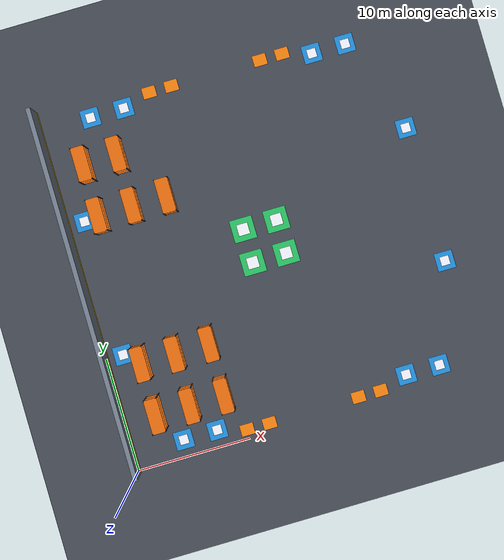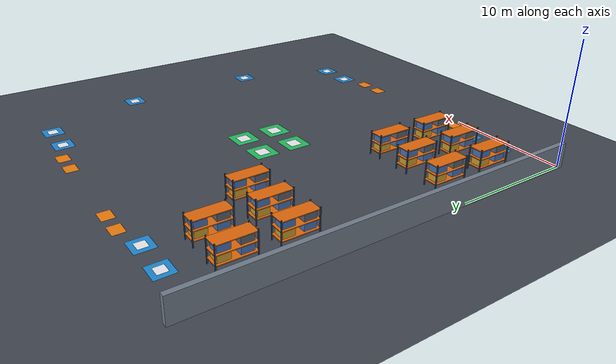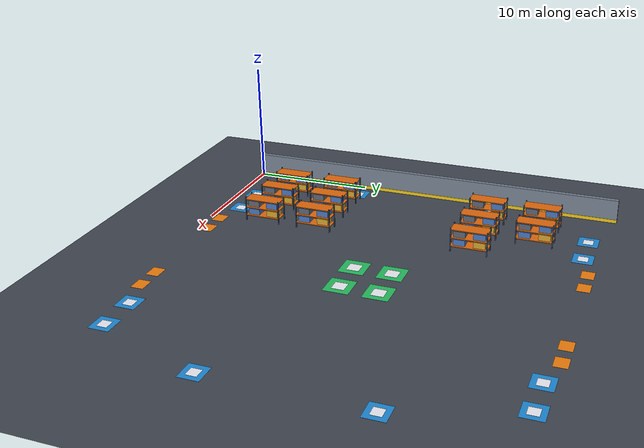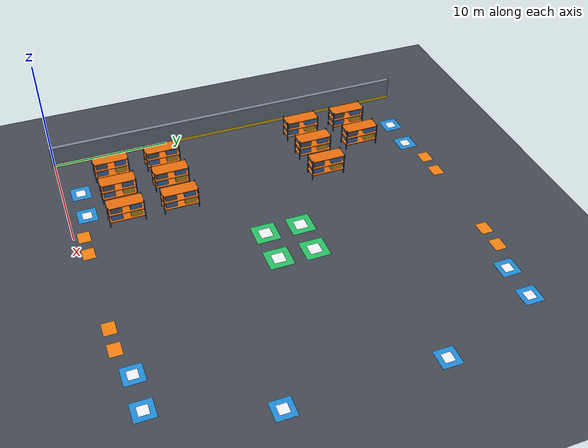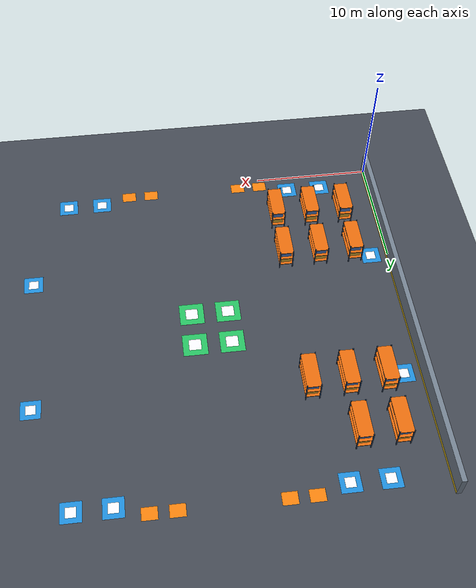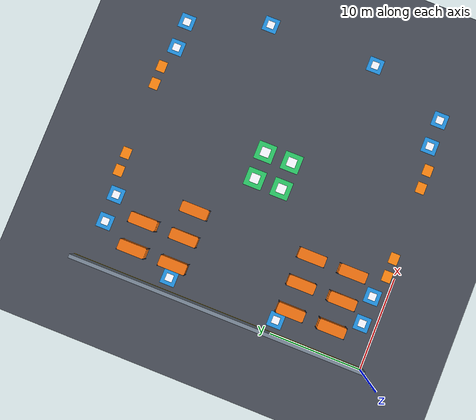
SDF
<sdf version="1.8">
 <world name="warehouse_m9_v2">
  <model name="ground_plane">
   <static>true</static>
   <pose>16.0 16.0 0.0 0 0 0</pose>
   <link name="floor_link">
    <collision name="collision">
     <geometry><plane><normal>0 0 1</normal><size>40 40</size></plane></geometry>
     <surface><friction><ode><mu>100</mu><mu2>50</mu2></ode></friction></surface>
    </collision>
    <visual name="floor_visual">
     <geometry><plane><normal>0 0 1</normal><size>40 40</size></plane></geometry>
     <material>
      <ambient>0.22 0.24 0.27 1.0</ambient>
      <diffuse>0.26 0.28 0.32 1.0</diffuse>
      <specular>0.45 0.45 0.50 1.0</specular>
     </material>
    </visual>
   </link>
  </model>
  <model name="wall_west">
   <static>true</static>
   <pose>0.0 16.0 1.0 0 0 0</pose>
   <link name="link">
    <collision name="col"><geometry><box><size>0.4 32.4 2.0</size></box></geometry></collision>
    <visual name="wall_vis">
     <geometry><box><size>0.4 32.4 2.0</size></box></geometry>
     <material><ambient>0.40 0.44 0.50 1.0</ambient><diffuse>0.45 0.50 0.56 1.0</diffuse></material>
    </visual>
    <visual name="kickplate">
     <pose>0.201 0.0 -0.85 0 0 0</pose>
     <geometry><box><size>0.02 32.38 0.30</size></box></geometry>
     <material><ambient>0.85 0.70 0.10 1.0</ambient><diffuse>0.90 0.75 0.10 1.0</diffuse></material>
    </visual>
   </link>
  </model>
  <model name="operational_zones">
   <static>true</static>
   <pose>0 0 0.003 0 0 0</pose>
   <link name="zones_link">
    <visual name="pickup_s1_pad">
     <pose>4.5 1.5 0 0 0 0</pose>
     <geometry><box><size>1.6 1.6 0.002</size></box></geometry>
     <material><ambient>0.10 0.45 0.75 1.0</ambient><diffuse>0.12 0.55 0.85 1.0</diffuse></material>
    </visual>
    <visual name="pickup_s1_target">
     <pose>4.5 1.5 0.001 0 0 0</pose>
     <geometry><box><size>0.80 0.80 0.002</size></box></geometry>
     <material><ambient>0.90 0.90 0.95 1.0</ambient><diffuse>0.95 0.95 0.98 1.0</diffuse></material>
    </visual>
    <visual name="pickup_s2_pad">
     <pose>7.5 1.5 0 0 0 0</pose>
     <geometry><box><size>1.6 1.6 0.002</size></box></geometry>
     <material><ambient>0.10 0.45 0.75 1.0</ambient><diffuse>0.12 0.55 0.85 1.0</diffuse></material>
    </visual>
    <visual name="pickup_s2_target">
     <pose>7.5 1.5 0.001 0 0 0</pose>
     <geometry><box><size>0.80 0.80 0.002</size></box></geometry>
     <material><ambient>0.90 0.90 0.95 1.0</ambient><diffuse>0.95 0.95 0.98 1.0</diffuse></material>
    </visual>
    <visual name="pickup_s3_pad">
     <pose>24.5 1.5 0 0 0 0</pose>
     <geometry><box><size>1.6 1.6 0.002</size></box></geometry>
     <material><ambient>0.10 0.45 0.75 1.0</ambient><diffuse>0.12 0.55 0.85 1.0</diffuse></material>
    </visual>
    <visual name="pickup_s3_target">
     <pose>24.5 1.5 0.001 0 0 0</pose>
     <geometry><box><size>0.80 0.80 0.002</size></box></geometry>
     <material><ambient>0.90 0.90 0.95 1.0</ambient><diffuse>0.95 0.95 0.98 1.0</diffuse></material>
    </visual>
    <visual name="pickup_s4_pad">
     <pose>27.5 1.5 0 0 0 0</pose>
     <geometry><box><size>1.6 1.6 0.002</size></box></geometry>
     <material><ambient>0.10 0.45 0.75 1.0</ambient><diffuse>0.12 0.55 0.85 1.0</diffuse></material>
    </visual>
    <visual name="pickup_s4_target">
     <pose>27.5 1.5 0.001 0 0 0</pose>
     <geometry><box><size>0.80 0.80 0.002</size></box></geometry>
     <material><ambient>0.90 0.90 0.95 1.0</ambient><diffuse>0.95 0.95 0.98 1.0</diffuse></material>
    </visual>
    <visual name="pickup_n1_pad">
     <pose>4.5 30.5 0 0 0 0</pose>
     <geometry><box><size>1.6 1.6 0.002</size></box></geometry>
     <material><ambient>0.10 0.45 0.75 1.0</ambient><diffuse>0.12 0.55 0.85 1.0</diffuse></material>
    </visual>
    <visual name="pickup_n1_target">
     <pose>4.5 30.5 0.001 0 0 0</pose>
     <geometry><box><size>0.80 0.80 0.002</size></box></geometry>
     <material><ambient>0.90 0.90 0.95 1.0</ambient><diffuse>0.95 0.95 0.98 1.0</diffuse></material>
    </visual>
    <visual name="pickup_n2_pad">
     <pose>7.5 30.5 0 0 0 0</pose>
     <geometry><box><size>1.6 1.6 0.002</size></box></geometry>
     <material><ambient>0.10 0.45 0.75 1.0</ambient><diffuse>0.12 0.55 0.85 1.0</diffuse></material>
    </visual>
    <visual name="pickup_n2_target">
     <pose>7.5 30.5 0.001 0 0 0</pose>
     <geometry><box><size>0.80 0.80 0.002</size></box></geometry>
     <material><ambient>0.90 0.90 0.95 1.0</ambient><diffuse>0.95 0.95 0.98 1.0</diffuse></material>
    </visual>
    <visual name="pickup_n3_pad">
     <pose>24.5 30.5 0 0 0 0</pose>
     <geometry><box><size>1.6 1.6 0.002</size></box></geometry>
     <material><ambient>0.10 0.45 0.75 1.0</ambient><diffuse>0.12 0.55 0.85 1.0</diffuse></material>
    </visual>
    <visual name="pickup_n3_target">
     <pose>24.5 30.5 0.001 0 0 0</pose>
     <geometry><box><size>0.80 0.80 0.002</size></box></geometry>
     <material><ambient>0.90 0.90 0.95 1.0</ambient><diffuse>0.95 0.95 0.98 1.0</diffuse></material>
    </visual>
    <visual name="pickup_n4_pad">
     <pose>27.5 30.5 0 0 0 0</pose>
     <geometry><box><size>1.6 1.6 0.002</size></box></geometry>
     <material><ambient>0.10 0.45 0.75 1.0</ambient><diffuse>0.12 0.55 0.85 1.0</diffuse></material>
    </visual>
    <visual name="pickup_n4_target">
     <pose>27.5 30.5 0.001 0 0 0</pose>
     <geometry><box><size>0.80 0.80 0.002</size></box></geometry>
     <material><ambient>0.90 0.90 0.95 1.0</ambient><diffuse>0.95 0.95 0.98 1.0</diffuse></material>
    </visual>
    <visual name="pickup_w1_pad">
     <pose>1.5 10.0 0 0 0 0</pose>
     <geometry><box><size>1.6 1.6 0.002</size></box></geometry>
     <material><ambient>0.10 0.45 0.75 1.0</ambient><diffuse>0.12 0.55 0.85 1.0</diffuse></material>
    </visual>
    <visual name="pickup_w1_target">
     <pose>1.5 10.0 0.001 0 0 0</pose>
     <geometry><box><size>0.80 0.80 0.002</size></box></geometry>
     <material><ambient>0.90 0.90 0.95 1.0</ambient><diffuse>0.95 0.95 0.98 1.0</diffuse></material>
    </visual>
    <visual name="pickup_w2_pad">
     <pose>1.5 22.0 0 0 0 0</pose>
     <geometry><box><size>1.6 1.6 0.002</size></box></geometry>
     <material><ambient>0.10 0.45 0.75 1.0</ambient><diffuse>0.12 0.55 0.85 1.0</diffuse></material>
    </visual>
    <visual name="pickup_w2_target">
     <pose>1.5 22.0 0.001 0 0 0</pose>
     <geometry><box><size>0.80 0.80 0.002</size></box></geometry>
     <material><ambient>0.90 0.90 0.95 1.0</ambient><diffuse>0.95 0.95 0.98 1.0</diffuse></material>
    </visual>
    <visual name="pickup_e1_pad">
     <pose>30.5 10.0 0 0 0 0</pose>
     <geometry><box><size>1.6 1.6 0.002</size></box></geometry>
     <material><ambient>0.10 0.45 0.75 1.0</ambient><diffuse>0.12 0.55 0.85 1.0</diffuse></material>
    </visual>
    <visual name="pickup_e1_target">
     <pose>30.5 10.0 0.001 0 0 0</pose>
     <geometry><box><size>0.80 0.80 0.002</size></box></geometry>
     <material><ambient>0.90 0.90 0.95 1.0</ambient><diffuse>0.95 0.95 0.98 1.0</diffuse></material>
    </visual>
    <visual name="pickup_e2_pad">
     <pose>30.5 22.0 0 0 0 0</pose>
     <geometry><box><size>1.6 1.6 0.002</size></box></geometry>
     <material><ambient>0.10 0.45 0.75 1.0</ambient><diffuse>0.12 0.55 0.85 1.0</diffuse></material>
    </visual>
    <visual name="pickup_e2_target">
     <pose>30.5 22.0 0.001 0 0 0</pose>
     <geometry><box><size>0.80 0.80 0.002</size></box></geometry>
     <material><ambient>0.90 0.90 0.95 1.0</ambient><diffuse>0.95 0.95 0.98 1.0</diffuse></material>
    </visual>
    <visual name="dropoff_hub_bay1_zone">
     <pose>14.5 14.5 0 0 0 0</pose>
     <geometry><box><size>2.0 2.0 0.002</size></box></geometry>
     <material><ambient>0.12 0.65 0.32 1.0</ambient><diffuse>0.15 0.75 0.38 1.0</diffuse></material>
    </visual>
    <visual name="dropoff_hub_bay1_center">
     <pose>14.5 14.5 0.001 0 0 0</pose>
     <geometry><box><size>1.0 1.0 0.002</size></box></geometry>
     <material><ambient>0.90 0.90 0.92 1.0</ambient><diffuse>0.95 0.95 0.98 1.0</diffuse></material>
    </visual>
    <visual name="dropoff_hub_bay2_zone">
     <pose>14.5 17.5 0 0 0 0</pose>
     <geometry><box><size>2.0 2.0 0.002</size></box></geometry>
     <material><ambient>0.12 0.65 0.32 1.0</ambient><diffuse>0.15 0.75 0.38 1.0</diffuse></material>
    </visual>
    <visual name="dropoff_hub_bay2_center">
     <pose>14.5 17.5 0.001 0 0 0</pose>
     <geometry><box><size>1.0 1.0 0.002</size></box></geometry>
     <material><ambient>0.90 0.90 0.92 1.0</ambient><diffuse>0.95 0.95 0.98 1.0</diffuse></material>
    </visual>
    <visual name="dropoff_hub_bay3_zone">
     <pose>17.5 14.5 0 0 0 0</pose>
     <geometry><box><size>2.0 2.0 0.002</size></box></geometry>
     <material><ambient>0.12 0.65 0.32 1.0</ambient><diffuse>0.15 0.75 0.38 1.0</diffuse></material>
    </visual>
    <visual name="dropoff_hub_bay3_center">
     <pose>17.5 14.5 0.001 0 0 0</pose>
     <geometry><box><size>1.0 1.0 0.002</size></box></geometry>
     <material><ambient>0.90 0.90 0.92 1.0</ambient><diffuse>0.95 0.95 0.98 1.0</diffuse></material>
    </visual>
    <visual name="dropoff_hub_bay4_zone">
     <pose>17.5 17.5 0 0 0 0</pose>
     <geometry><box><size>2.0 2.0 0.002</size></box></geometry>
     <material><ambient>0.12 0.65 0.32 1.0</ambient><diffuse>0.15 0.75 0.38 1.0</diffuse></material>
    </visual>
    <visual name="dropoff_hub_bay4_center">
     <pose>17.5 17.5 0.001 0 0 0</pose>
     <geometry><box><size>1.0 1.0 0.002</size></box></geometry>
     <material><ambient>0.90 0.90 0.92 1.0</ambient><diffuse>0.95 0.95 0.98 1.0</diffuse></material>
    </visual>
    <visual name="charge_s1_pad">
     <pose>10.0 0.8 0 0 0 0</pose>
     <geometry><box><size>1.2 1.0 0.002</size></box></geometry>
     <material><ambient>0.85 0.45 0.05 1.0</ambient><diffuse>0.95 0.50 0.05 1.0</diffuse></material>
    </visual>
    <visual name="charge_s2_pad">
     <pose>12.0 0.8 0 0 0 0</pose>
     <geometry><box><size>1.2 1.0 0.002</size></box></geometry>
     <material><ambient>0.85 0.45 0.05 1.0</ambient><diffuse>0.95 0.50 0.05 1.0</diffuse></material>
    </visual>
    <visual name="charge_s3_pad">
     <pose>20.0 0.8 0 0 0 0</pose>
     <geometry><box><size>1.2 1.0 0.002</size></box></geometry>
     <material><ambient>0.85 0.45 0.05 1.0</ambient><diffuse>0.95 0.50 0.05 1.0</diffuse></material>
    </visual>
    <visual name="charge_s4_pad">
     <pose>22.0 0.8 0 0 0 0</pose>
     <geometry><box><size>1.2 1.0 0.002</size></box></geometry>
     <material><ambient>0.85 0.45 0.05 1.0</ambient><diffuse>0.95 0.50 0.05 1.0</diffuse></material>
    </visual>
    <visual name="charge_n1_pad">
     <pose>10.0 31.2 0 0 0 0</pose>
     <geometry><box><size>1.2 1.0 0.002</size></box></geometry>
     <material><ambient>0.85 0.45 0.05 1.0</ambient><diffuse>0.95 0.50 0.05 1.0</diffuse></material>
    </visual>
    <visual name="charge_n2_pad">
     <pose>12.0 31.2 0 0 0 0</pose>
     <geometry><box><size>1.2 1.0 0.002</size></box></geometry>
     <material><ambient>0.85 0.45 0.05 1.0</ambient><diffuse>0.95 0.50 0.05 1.0</diffuse></material>
    </visual>
    <visual name="charge_n3_pad">
     <pose>20.0 31.2 0 0 0 0</pose>
     <geometry><box><size>1.2 1.0 0.002</size></box></geometry>
     <material><ambient>0.85 0.45 0.05 1.0</ambient><diffuse>0.95 0.50 0.05 1.0</diffuse></material>
    </visual>
    <visual name="charge_n4_pad">
     <pose>22.0 31.2 0 0 0 0</pose>
     <geometry><box><size>1.2 1.0 0.002</size></box></geometry>
     <material><ambient>0.85 0.45 0.05 1.0</ambient><diffuse>0.95 0.50 0.05 1.0</diffuse></material>
    </visual>
   </link>
  </model>
  <model name="rack_01">
   <static>true</static>
   <pose>3.0 4.5 1.0 0 0 0</pose>
   <link name="link">
    <collision name="col"><geometry><box><size>1.2 3.0 2.0</size></box></geometry></collision>
    <visual name="frame_fl">
     <pose>-0.55 -1.45 0 0 0 0</pose>
     <geometry><box><size>0.08 0.08 2.0</size></box></geometry>
     <material><ambient>0.15 0.22 0.32 1.0</ambient><diffuse>0.18 0.26 0.38 1.0</diffuse></material>
    </visual>
    <visual name="frame_fr">
     <pose>0.55 -1.45 0 0 0 0</pose>
     <geometry><box><size>0.08 0.08 2.0</size></box></geometry>
     <material><ambient>0.15 0.22 0.32 1.0</ambient><diffuse>0.18 0.26 0.38 1.0</diffuse></material>
    </visual>
    <visual name="frame_rl">
     <pose>-0.55 1.45 0 0 0 0</pose>
     <geometry><box><size>0.08 0.08 2.0</size></box></geometry>
     <material><ambient>0.15 0.22 0.32 1.0</ambient><diffuse>0.18 0.26 0.38 1.0</diffuse></material>
    </visual>
    <visual name="frame_rr">
     <pose>0.55 1.45 0 0 0 0</pose>
     <geometry><box><size>0.08 0.08 2.0</size></box></geometry>
     <material><ambient>0.15 0.22 0.32 1.0</ambient><diffuse>0.18 0.26 0.38 1.0</diffuse></material>
    </visual>
    <visual name="shelf_tier1">
     <pose>0 0 -0.55 0 0 0</pose>
     <geometry><box><size>1.16 2.96 0.06</size></box></geometry>
     <material><ambient>0.85 0.38 0.05 1.0</ambient><diffuse>0.90 0.42 0.05 1.0</diffuse></material>
    </visual>
    <visual name="shelf_tier2">
     <pose>0 0 0.15 0 0 0</pose>
     <geometry><box><size>1.16 2.96 0.06</size></box></geometry>
     <material><ambient>0.85 0.38 0.05 1.0</ambient><diffuse>0.90 0.42 0.05 1.0</diffuse></material>
    </visual>
    <visual name="shelf_tier3">
     <pose>0 0 0.85 0 0 0</pose>
     <geometry><box><size>1.16 2.96 0.06</size></box></geometry>
     <material><ambient>0.85 0.38 0.05 1.0</ambient><diffuse>0.90 0.42 0.05 1.0</diffuse></material>
    </visual>
    <visual name="cargo_1">
     <pose>0 -0.8 -0.25 0 0 0</pose>
     <geometry><box><size>0.85 0.95 0.50</size></box></geometry>
     <material><ambient>0.25 0.40 0.65 1.0</ambient><diffuse>0.28 0.45 0.72 1.0</diffuse></material>
    </visual>
    <visual name="cargo_2">
     <pose>0 0.8 -0.25 0 0 0</pose>
     <geometry><box><size>0.85 0.95 0.50</size></box></geometry>
     <material><ambient>0.70 0.55 0.15 1.0</ambient><diffuse>0.80 0.62 0.18 1.0</diffuse></material>
    </visual>
    <visual name="cargo_3">
     <pose>0 -0.8 0.45 0 0 0</pose>
     <geometry><box><size>0.85 0.95 0.50</size></box></geometry>
     <material><ambient>0.30 0.34 0.38 1.0</ambient><diffuse>0.35 0.38 0.44 1.0</diffuse></material>
    </visual>
    <visual name="cargo_4">
     <pose>0 0.8 0.45 0 0 0</pose>
     <geometry><box><size>0.85 0.95 0.50</size></box></geometry>
     <material><ambient>0.25 0.40 0.65 1.0</ambient><diffuse>0.28 0.45 0.72 1.0</diffuse></material>
    </visual>
   </link>
  </model>
  <model name="rack_02">
   <static>true</static>
   <pose>6.0 4.5 1.0 0 0 0</pose>
   <link name="link">
    <collision name="col"><geometry><box><size>1.2 3.0 2.0</size></box></geometry></collision>
    <visual name="frame_fl">
     <pose>-0.55 -1.45 0 0 0 0</pose>
     <geometry><box><size>0.08 0.08 2.0</size></box></geometry>
     <material><ambient>0.15 0.22 0.32 1.0</ambient><diffuse>0.18 0.26 0.38 1.0</diffuse></material>
    </visual>
    <visual name="frame_fr">
     <pose>0.55 -1.45 0 0 0 0</pose>
     <geometry><box><size>0.08 0.08 2.0</size></box></geometry>
     <material><ambient>0.15 0.22 0.32 1.0</ambient><diffuse>0.18 0.26 0.38 1.0</diffuse></material>
    </visual>
    <visual name="frame_rl">
     <pose>-0.55 1.45 0 0 0 0</pose>
     <geometry><box><size>0.08 0.08 2.0</size></box></geometry>
     <material><ambient>0.15 0.22 0.32 1.0</ambient><diffuse>0.18 0.26 0.38 1.0</diffuse></material>
    </visual>
    <visual name="frame_rr">
     <pose>0.55 1.45 0 0 0 0</pose>
     <geometry><box><size>0.08 0.08 2.0</size></box></geometry>
     <material><ambient>0.15 0.22 0.32 1.0</ambient><diffuse>0.18 0.26 0.38 1.0</diffuse></material>
    </visual>
    <visual name="shelf_tier1">
     <pose>0 0 -0.55 0 0 0</pose>
     <geometry><box><size>1.16 2.96 0.06</size></box></geometry>
     <material><ambient>0.85 0.38 0.05 1.0</ambient><diffuse>0.90 0.42 0.05 1.0</diffuse></material>
    </visual>
    <visual name="shelf_tier2">
     <pose>0 0 0.15 0 0 0</pose>
     <geometry><box><size>1.16 2.96 0.06</size></box></geometry>
     <material><ambient>0.85 0.38 0.05 1.0</ambient><diffuse>0.90 0.42 0.05 1.0</diffuse></material>
    </visual>
    <visual name="shelf_tier3">
     <pose>0 0 0.85 0 0 0</pose>
     <geometry><box><size>1.16 2.96 0.06</size></box></geometry>
     <material><ambient>0.85 0.38 0.05 1.0</ambient><diffuse>0.90 0.42 0.05 1.0</diffuse></material>
    </visual>
    <visual name="cargo_1">
     <pose>0 -0.8 -0.25 0 0 0</pose>
     <geometry><box><size>0.85 0.95 0.50</size></box></geometry>
     <material><ambient>0.25 0.40 0.65 1.0</ambient><diffuse>0.28 0.45 0.72 1.0</diffuse></material>
    </visual>
    <visual name="cargo_2">
     <pose>0 0.8 -0.25 0 0 0</pose>
     <geometry><box><size>0.85 0.95 0.50</size></box></geometry>
     <material><ambient>0.70 0.55 0.15 1.0</ambient><diffuse>0.80 0.62 0.18 1.0</diffuse></material>
    </visual>
    <visual name="cargo_3">
     <pose>0 -0.8 0.45 0 0 0</pose>
     <geometry><box><size>0.85 0.95 0.50</size></box></geometry>
     <material><ambient>0.30 0.34 0.38 1.0</ambient><diffuse>0.35 0.38 0.44 1.0</diffuse></material>
    </visual>
    <visual name="cargo_4">
     <pose>0 0.8 0.45 0 0 0</pose>
     <geometry><box><size>0.85 0.95 0.50</size></box></geometry>
     <material><ambient>0.25 0.40 0.65 1.0</ambient><diffuse>0.28 0.45 0.72 1.0</diffuse></material>
    </visual>
   </link>
  </model>
  <model name="rack_03">
   <static>true</static>
   <pose>9.0 4.5 1.0 0 0 0</pose>
   <link name="link">
    <collision name="col"><geometry><box><size>1.2 3.0 2.0</size></box></geometry></collision>
    <visual name="frame_fl">
     <pose>-0.55 -1.45 0 0 0 0</pose>
     <geometry><box><size>0.08 0.08 2.0</size></box></geometry>
     <material><ambient>0.15 0.22 0.32 1.0</ambient><diffuse>0.18 0.26 0.38 1.0</diffuse></material>
    </visual>
    <visual name="frame_fr">
     <pose>0.55 -1.45 0 0 0 0</pose>
     <geometry><box><size>0.08 0.08 2.0</size></box></geometry>
     <material><ambient>0.15 0.22 0.32 1.0</ambient><diffuse>0.18 0.26 0.38 1.0</diffuse></material>
    </visual>
    <visual name="frame_rl">
     <pose>-0.55 1.45 0 0 0 0</pose>
     <geometry><box><size>0.08 0.08 2.0</size></box></geometry>
     <material><ambient>0.15 0.22 0.32 1.0</ambient><diffuse>0.18 0.26 0.38 1.0</diffuse></material>
    </visual>
    <visual name="frame_rr">
     <pose>0.55 1.45 0 0 0 0</pose>
     <geometry><box><size>0.08 0.08 2.0</size></box></geometry>
     <material><ambient>0.15 0.22 0.32 1.0</ambient><diffuse>0.18 0.26 0.38 1.0</diffuse></material>
    </visual>
    <visual name="shelf_tier1">
     <pose>0 0 -0.55 0 0 0</pose>
     <geometry><box><size>1.16 2.96 0.06</size></box></geometry>
     <material><ambient>0.85 0.38 0.05 1.0</ambient><diffuse>0.90 0.42 0.05 1.0</diffuse></material>
    </visual>
    <visual name="shelf_tier2">
     <pose>0 0 0.15 0 0 0</pose>
     <geometry><box><size>1.16 2.96 0.06</size></box></geometry>
     <material><ambient>0.85 0.38 0.05 1.0</ambient><diffuse>0.90 0.42 0.05 1.0</diffuse></material>
    </visual>
    <visual name="shelf_tier3">
     <pose>0 0 0.85 0 0 0</pose>
     <geometry><box><size>1.16 2.96 0.06</size></box></geometry>
     <material><ambient>0.85 0.38 0.05 1.0</ambient><diffuse>0.90 0.42 0.05 1.0</diffuse></material>
    </visual>
    <visual name="cargo_1">
     <pose>0 -0.8 -0.25 0 0 0</pose>
     <geometry><box><size>0.85 0.95 0.50</size></box></geometry>
     <material><ambient>0.25 0.40 0.65 1.0</ambient><diffuse>0.28 0.45 0.72 1.0</diffuse></material>
    </visual>
    <visual name="cargo_2">
     <pose>0 0.8 -0.25 0 0 0</pose>
     <geometry><box><size>0.85 0.95 0.50</size></box></geometry>
     <material><ambient>0.70 0.55 0.15 1.0</ambient><diffuse>0.80 0.62 0.18 1.0</diffuse></material>
    </visual>
    <visual name="cargo_3">
     <pose>0 -0.8 0.45 0 0 0</pose>
     <geometry><box><size>0.85 0.95 0.50</size></box></geometry>
     <material><ambient>0.30 0.34 0.38 1.0</ambient><diffuse>0.35 0.38 0.44 1.0</diffuse></material>
    </visual>
    <visual name="cargo_4">
     <pose>0 0.8 0.45 0 0 0</pose>
     <geometry><box><size>0.85 0.95 0.50</size></box></geometry>
     <material><ambient>0.25 0.40 0.65 1.0</ambient><diffuse>0.28 0.45 0.72 1.0</diffuse></material>
    </visual>
   </link>
  </model>
  <model name="rack_07">
   <static>true</static>
   <pose>3.0 9.0 1.0 0 0 0</pose>
   <link name="link">
    <collision name="col"><geometry><box><size>1.2 3.0 2.0</size></box></geometry></collision>
    <visual name="frame_fl">
     <pose>-0.55 -1.45 0 0 0 0</pose>
     <geometry><box><size>0.08 0.08 2.0</size></box></geometry>
     <material><ambient>0.15 0.22 0.32 1.0</ambient><diffuse>0.18 0.26 0.38 1.0</diffuse></material>
    </visual>
    <visual name="frame_fr">
     <pose>0.55 -1.45 0 0 0 0</pose>
     <geometry><box><size>0.08 0.08 2.0</size></box></geometry>
     <material><ambient>0.15 0.22 0.32 1.0</ambient><diffuse>0.18 0.26 0.38 1.0</diffuse></material>
    </visual>
    <visual name="frame_rl">
     <pose>-0.55 1.45 0 0 0 0</pose>
     <geometry><box><size>0.08 0.08 2.0</size></box></geometry>
     <material><ambient>0.15 0.22 0.32 1.0</ambient><diffuse>0.18 0.26 0.38 1.0</diffuse></material>
    </visual>
    <visual name="frame_rr">
     <pose>0.55 1.45 0 0 0 0</pose>
     <geometry><box><size>0.08 0.08 2.0</size></box></geometry>
     <material><ambient>0.15 0.22 0.32 1.0</ambient><diffuse>0.18 0.26 0.38 1.0</diffuse></material>
    </visual>
    <visual name="shelf_tier1">
     <pose>0 0 -0.55 0 0 0</pose>
     <geometry><box><size>1.16 2.96 0.06</size></box></geometry>
     <material><ambient>0.85 0.38 0.05 1.0</ambient><diffuse>0.90 0.42 0.05 1.0</diffuse></material>
    </visual>
    <visual name="shelf_tier2">
     <pose>0 0 0.15 0 0 0</pose>
     <geometry><box><size>1.16 2.96 0.06</size></box></geometry>
     <material><ambient>0.85 0.38 0.05 1.0</ambient><diffuse>0.90 0.42 0.05 1.0</diffuse></material>
    </visual>
    <visual name="shelf_tier3">
     <pose>0 0 0.85 0 0 0</pose>
     <geometry><box><size>1.16 2.96 0.06</size></box></geometry>
     <material><ambient>0.85 0.38 0.05 1.0</ambient><diffuse>0.90 0.42 0.05 1.0</diffuse></material>
    </visual>
    <visual name="cargo_1">
     <pose>0 -0.8 -0.25 0 0 0</pose>
     <geometry><box><size>0.85 0.95 0.50</size></box></geometry>
     <material><ambient>0.25 0.40 0.65 1.0</ambient><diffuse>0.28 0.45 0.72 1.0</diffuse></material>
    </visual>
    <visual name="cargo_2">
     <pose>0 0.8 -0.25 0 0 0</pose>
     <geometry><box><size>0.85 0.95 0.50</size></box></geometry>
     <material><ambient>0.70 0.55 0.15 1.0</ambient><diffuse>0.80 0.62 0.18 1.0</diffuse></material>
    </visual>
    <visual name="cargo_3">
     <pose>0 -0.8 0.45 0 0 0</pose>
     <geometry><box><size>0.85 0.95 0.50</size></box></geometry>
     <material><ambient>0.30 0.34 0.38 1.0</ambient><diffuse>0.35 0.38 0.44 1.0</diffuse></material>
    </visual>
    <visual name="cargo_4">
     <pose>0 0.8 0.45 0 0 0</pose>
     <geometry><box><size>0.85 0.95 0.50</size></box></geometry>
     <material><ambient>0.25 0.40 0.65 1.0</ambient><diffuse>0.28 0.45 0.72 1.0</diffuse></material>
    </visual>
   </link>
  </model>
  <model name="rack_08">
   <static>true</static>
   <pose>6.0 9.0 1.0 0 0 0</pose>
   <link name="link">
    <collision name="col"><geometry><box><size>1.2 3.0 2.0</size></box></geometry></collision>
    <visual name="frame_fl">
     <pose>-0.55 -1.45 0 0 0 0</pose>
     <geometry><box><size>0.08 0.08 2.0</size></box></geometry>
     <material><ambient>0.15 0.22 0.32 1.0</ambient><diffuse>0.18 0.26 0.38 1.0</diffuse></material>
    </visual>
    <visual name="frame_fr">
     <pose>0.55 -1.45 0 0 0 0</pose>
     <geometry><box><size>0.08 0.08 2.0</size></box></geometry>
     <material><ambient>0.15 0.22 0.32 1.0</ambient><diffuse>0.18 0.26 0.38 1.0</diffuse></material>
    </visual>
    <visual name="frame_rl">
     <pose>-0.55 1.45 0 0 0 0</pose>
     <geometry><box><size>0.08 0.08 2.0</size></box></geometry>
     <material><ambient>0.15 0.22 0.32 1.0</ambient><diffuse>0.18 0.26 0.38 1.0</diffuse></material>
    </visual>
    <visual name="frame_rr">
     <pose>0.55 1.45 0 0 0 0</pose>
     <geometry><box><size>0.08 0.08 2.0</size></box></geometry>
     <material><ambient>0.15 0.22 0.32 1.0</ambient><diffuse>0.18 0.26 0.38 1.0</diffuse></material>
    </visual>
    <visual name="shelf_tier1">
     <pose>0 0 -0.55 0 0 0</pose>
     <geometry><box><size>1.16 2.96 0.06</size></box></geometry>
     <material><ambient>0.85 0.38 0.05 1.0</ambient><diffuse>0.90 0.42 0.05 1.0</diffuse></material>
    </visual>
    <visual name="shelf_tier2">
     <pose>0 0 0.15 0 0 0</pose>
     <geometry><box><size>1.16 2.96 0.06</size></box></geometry>
     <material><ambient>0.85 0.38 0.05 1.0</ambient><diffuse>0.90 0.42 0.05 1.0</diffuse></material>
    </visual>
    <visual name="shelf_tier3">
     <pose>0 0 0.85 0 0 0</pose>
     <geometry><box><size>1.16 2.96 0.06</size></box></geometry>
     <material><ambient>0.85 0.38 0.05 1.0</ambient><diffuse>0.90 0.42 0.05 1.0</diffuse></material>
    </visual>
    <visual name="cargo_1">
     <pose>0 -0.8 -0.25 0 0 0</pose>
     <geometry><box><size>0.85 0.95 0.50</size></box></geometry>
     <material><ambient>0.25 0.40 0.65 1.0</ambient><diffuse>0.28 0.45 0.72 1.0</diffuse></material>
    </visual>
    <visual name="cargo_2">
     <pose>0 0.8 -0.25 0 0 0</pose>
     <geometry><box><size>0.85 0.95 0.50</size></box></geometry>
     <material><ambient>0.70 0.55 0.15 1.0</ambient><diffuse>0.80 0.62 0.18 1.0</diffuse></material>
    </visual>
    <visual name="cargo_3">
     <pose>0 -0.8 0.45 0 0 0</pose>
     <geometry><box><size>0.85 0.95 0.50</size></box></geometry>
     <material><ambient>0.30 0.34 0.38 1.0</ambient><diffuse>0.35 0.38 0.44 1.0</diffuse></material>
    </visual>
    <visual name="cargo_4">
     <pose>0 0.8 0.45 0 0 0</pose>
     <geometry><box><size>0.85 0.95 0.50</size></box></geometry>
     <material><ambient>0.25 0.40 0.65 1.0</ambient><diffuse>0.28 0.45 0.72 1.0</diffuse></material>
    </visual>
   </link>
  </model>
  <model name="rack_09">
   <static>true</static>
   <pose>9.0 9.0 1.0 0 0 0</pose>
   <link name="link">
    <collision name="col"><geometry><box><size>1.2 3.0 2.0</size></box></geometry></collision>
    <visual name="frame_fl">
     <pose>-0.55 -1.45 0 0 0 0</pose>
     <geometry><box><size>0.08 0.08 2.0</size></box></geometry>
     <material><ambient>0.15 0.22 0.32 1.0</ambient><diffuse>0.18 0.26 0.38 1.0</diffuse></material>
    </visual>
    <visual name="frame_fr">
     <pose>0.55 -1.45 0 0 0 0</pose>
     <geometry><box><size>0.08 0.08 2.0</size></box></geometry>
     <material><ambient>0.15 0.22 0.32 1.0</ambient><diffuse>0.18 0.26 0.38 1.0</diffuse></material>
    </visual>
    <visual name="frame_rl">
     <pose>-0.55 1.45 0 0 0 0</pose>
     <geometry><box><size>0.08 0.08 2.0</size></box></geometry>
     <material><ambient>0.15 0.22 0.32 1.0</ambient><diffuse>0.18 0.26 0.38 1.0</diffuse></material>
    </visual>
    <visual name="frame_rr">
     <pose>0.55 1.45 0 0 0 0</pose>
     <geometry><box><size>0.08 0.08 2.0</size></box></geometry>
     <material><ambient>0.15 0.22 0.32 1.0</ambient><diffuse>0.18 0.26 0.38 1.0</diffuse></material>
    </visual>
    <visual name="shelf_tier1">
     <pose>0 0 -0.55 0 0 0</pose>
     <geometry><box><size>1.16 2.96 0.06</size></box></geometry>
     <material><ambient>0.85 0.38 0.05 1.0</ambient><diffuse>0.90 0.42 0.05 1.0</diffuse></material>
    </visual>
    <visual name="shelf_tier2">
     <pose>0 0 0.15 0 0 0</pose>
     <geometry><box><size>1.16 2.96 0.06</size></box></geometry>
     <material><ambient>0.85 0.38 0.05 1.0</ambient><diffuse>0.90 0.42 0.05 1.0</diffuse></material>
    </visual>
    <visual name="shelf_tier3">
     <pose>0 0 0.85 0 0 0</pose>
     <geometry><box><size>1.16 2.96 0.06</size></box></geometry>
     <material><ambient>0.85 0.38 0.05 1.0</ambient><diffuse>0.90 0.42 0.05 1.0</diffuse></material>
    </visual>
    <visual name="cargo_1">
     <pose>0 -0.8 -0.25 0 0 0</pose>
     <geometry><box><size>0.85 0.95 0.50</size></box></geometry>
     <material><ambient>0.25 0.40 0.65 1.0</ambient><diffuse>0.28 0.45 0.72 1.0</diffuse></material>
    </visual>
    <visual name="cargo_2">
     <pose>0 0.8 -0.25 0 0 0</pose>
     <geometry><box><size>0.85 0.95 0.50</size></box></geometry>
     <material><ambient>0.70 0.55 0.15 1.0</ambient><diffuse>0.80 0.62 0.18 1.0</diffuse></material>
    </visual>
    <visual name="cargo_3">
     <pose>0 -0.8 0.45 0 0 0</pose>
     <geometry><box><size>0.85 0.95 0.50</size></box></geometry>
     <material><ambient>0.30 0.34 0.38 1.0</ambient><diffuse>0.35 0.38 0.44 1.0</diffuse></material>
    </visual>
    <visual name="cargo_4">
     <pose>0 0.8 0.45 0 0 0</pose>
     <geometry><box><size>0.85 0.95 0.50</size></box></geometry>
     <material><ambient>0.25 0.40 0.65 1.0</ambient><diffuse>0.28 0.45 0.72 1.0</diffuse></material>
    </visual>
   </link>
  </model>
  <model name="rack_13">
   <static>true</static>
   <pose>3.0 22.0 1.0 0 0 0</pose>
   <link name="link">
    <collision name="col"><geometry><box><size>1.2 3.0 2.0</size></box></geometry></collision>
    <visual name="frame_fl">
     <pose>-0.55 -1.45 0 0 0 0</pose>
     <geometry><box><size>0.08 0.08 2.0</size></box></geometry>
     <material><ambient>0.15 0.22 0.32 1.0</ambient><diffuse>0.18 0.26 0.38 1.0</diffuse></material>
    </visual>
    <visual name="frame_fr">
     <pose>0.55 -1.45 0 0 0 0</pose>
     <geometry><box><size>0.08 0.08 2.0</size></box></geometry>
     <material><ambient>0.15 0.22 0.32 1.0</ambient><diffuse>0.18 0.26 0.38 1.0</diffuse></material>
    </visual>
    <visual name="frame_rl">
     <pose>-0.55 1.45 0 0 0 0</pose>
     <geometry><box><size>0.08 0.08 2.0</size></box></geometry>
     <material><ambient>0.15 0.22 0.32 1.0</ambient><diffuse>0.18 0.26 0.38 1.0</diffuse></material>
    </visual>
    <visual name="frame_rr">
     <pose>0.55 1.45 0 0 0 0</pose>
     <geometry><box><size>0.08 0.08 2.0</size></box></geometry>
     <material><ambient>0.15 0.22 0.32 1.0</ambient><diffuse>0.18 0.26 0.38 1.0</diffuse></material>
    </visual>
    <visual name="shelf_tier1">
     <pose>0 0 -0.55 0 0 0</pose>
     <geometry><box><size>1.16 2.96 0.06</size></box></geometry>
     <material><ambient>0.85 0.38 0.05 1.0</ambient><diffuse>0.90 0.42 0.05 1.0</diffuse></material>
    </visual>
    <visual name="shelf_tier2">
     <pose>0 0 0.15 0 0 0</pose>
     <geometry><box><size>1.16 2.96 0.06</size></box></geometry>
     <material><ambient>0.85 0.38 0.05 1.0</ambient><diffuse>0.90 0.42 0.05 1.0</diffuse></material>
    </visual>
    <visual name="shelf_tier3">
     <pose>0 0 0.85 0 0 0</pose>
     <geometry><box><size>1.16 2.96 0.06</size></box></geometry>
     <material><ambient>0.85 0.38 0.05 1.0</ambient><diffuse>0.90 0.42 0.05 1.0</diffuse></material>
    </visual>
    <visual name="cargo_1">
     <pose>0 -0.8 -0.25 0 0 0</pose>
     <geometry><box><size>0.85 0.95 0.50</size></box></geometry>
     <material><ambient>0.25 0.40 0.65 1.0</ambient><diffuse>0.28 0.45 0.72 1.0</diffuse></material>
    </visual>
    <visual name="cargo_2">
     <pose>0 0.8 -0.25 0 0 0</pose>
     <geometry><box><size>0.85 0.95 0.50</size></box></geometry>
     <material><ambient>0.70 0.55 0.15 1.0</ambient><diffuse>0.80 0.62 0.18 1.0</diffuse></material>
    </visual>
    <visual name="cargo_3">
     <pose>0 -0.8 0.45 0 0 0</pose>
     <geometry><box><size>0.85 0.95 0.50</size></box></geometry>
     <material><ambient>0.30 0.34 0.38 1.0</ambient><diffuse>0.35 0.38 0.44 1.0</diffuse></material>
    </visual>
    <visual name="cargo_4">
     <pose>0 0.8 0.45 0 0 0</pose>
     <geometry><box><size>0.85 0.95 0.50</size></box></geometry>
     <material><ambient>0.25 0.40 0.65 1.0</ambient><diffuse>0.28 0.45 0.72 1.0</diffuse></material>
    </visual>
   </link>
  </model>
  <model name="rack_14">
   <static>true</static>
   <pose>6.0 22.0 1.0 0 0 0</pose>
   <link name="link">
    <collision name="col"><geometry><box><size>1.2 3.0 2.0</size></box></geometry></collision>
    <visual name="frame_fl">
     <pose>-0.55 -1.45 0 0 0 0</pose>
     <geometry><box><size>0.08 0.08 2.0</size></box></geometry>
     <material><ambient>0.15 0.22 0.32 1.0</ambient><diffuse>0.18 0.26 0.38 1.0</diffuse></material>
    </visual>
    <visual name="frame_fr">
     <pose>0.55 -1.45 0 0 0 0</pose>
     <geometry><box><size>0.08 0.08 2.0</size></box></geometry>
     <material><ambient>0.15 0.22 0.32 1.0</ambient><diffuse>0.18 0.26 0.38 1.0</diffuse></material>
    </visual>
    <visual name="frame_rl">
     <pose>-0.55 1.45 0 0 0 0</pose>
     <geometry><box><size>0.08 0.08 2.0</size></box></geometry>
     <material><ambient>0.15 0.22 0.32 1.0</ambient><diffuse>0.18 0.26 0.38 1.0</diffuse></material>
    </visual>
    <visual name="frame_rr">
     <pose>0.55 1.45 0 0 0 0</pose>
     <geometry><box><size>0.08 0.08 2.0</size></box></geometry>
     <material><ambient>0.15 0.22 0.32 1.0</ambient><diffuse>0.18 0.26 0.38 1.0</diffuse></material>
    </visual>
    <visual name="shelf_tier1">
     <pose>0 0 -0.55 0 0 0</pose>
     <geometry><box><size>1.16 2.96 0.06</size></box></geometry>
     <material><ambient>0.85 0.38 0.05 1.0</ambient><diffuse>0.90 0.42 0.05 1.0</diffuse></material>
    </visual>
    <visual name="shelf_tier2">
     <pose>0 0 0.15 0 0 0</pose>
     <geometry><box><size>1.16 2.96 0.06</size></box></geometry>
     <material><ambient>0.85 0.38 0.05 1.0</ambient><diffuse>0.90 0.42 0.05 1.0</diffuse></material>
    </visual>
    <visual name="shelf_tier3">
     <pose>0 0 0.85 0 0 0</pose>
     <geometry><box><size>1.16 2.96 0.06</size></box></geometry>
     <material><ambient>0.85 0.38 0.05 1.0</ambient><diffuse>0.90 0.42 0.05 1.0</diffuse></material>
    </visual>
    <visual name="cargo_1">
     <pose>0 -0.8 -0.25 0 0 0</pose>
     <geometry><box><size>0.85 0.95 0.50</size></box></geometry>
     <material><ambient>0.25 0.40 0.65 1.0</ambient><diffuse>0.28 0.45 0.72 1.0</diffuse></material>
    </visual>
    <visual name="cargo_2">
     <pose>0 0.8 -0.25 0 0 0</pose>
     <geometry><box><size>0.85 0.95 0.50</size></box></geometry>
     <material><ambient>0.70 0.55 0.15 1.0</ambient><diffuse>0.80 0.62 0.18 1.0</diffuse></material>
    </visual>
    <visual name="cargo_3">
     <pose>0 -0.8 0.45 0 0 0</pose>
     <geometry><box><size>0.85 0.95 0.50</size></box></geometry>
     <material><ambient>0.30 0.34 0.38 1.0</ambient><diffuse>0.35 0.38 0.44 1.0</diffuse></material>
    </visual>
    <visual name="cargo_4">
     <pose>0 0.8 0.45 0 0 0</pose>
     <geometry><box><size>0.85 0.95 0.50</size></box></geometry>
     <material><ambient>0.25 0.40 0.65 1.0</ambient><diffuse>0.28 0.45 0.72 1.0</diffuse></material>
    </visual>
   </link>
  </model>
  <model name="rack_15">
   <static>true</static>
   <pose>9.0 22.0 1.0 0 0 0</pose>
   <link name="link">
    <collision name="col"><geometry><box><size>1.2 3.0 2.0</size></box></geometry></collision>
    <visual name="frame_fl">
     <pose>-0.55 -1.45 0 0 0 0</pose>
     <geometry><box><size>0.08 0.08 2.0</size></box></geometry>
     <material><ambient>0.15 0.22 0.32 1.0</ambient><diffuse>0.18 0.26 0.38 1.0</diffuse></material>
    </visual>
    <visual name="frame_fr">
     <pose>0.55 -1.45 0 0 0 0</pose>
     <geometry><box><size>0.08 0.08 2.0</size></box></geometry>
     <material><ambient>0.15 0.22 0.32 1.0</ambient><diffuse>0.18 0.26 0.38 1.0</diffuse></material>
    </visual>
    <visual name="frame_rl">
     <pose>-0.55 1.45 0 0 0 0</pose>
     <geometry><box><size>0.08 0.08 2.0</size></box></geometry>
     <material><ambient>0.15 0.22 0.32 1.0</ambient><diffuse>0.18 0.26 0.38 1.0</diffuse></material>
    </visual>
    <visual name="frame_rr">
     <pose>0.55 1.45 0 0 0 0</pose>
     <geometry><box><size>0.08 0.08 2.0</size></box></geometry>
     <material><ambient>0.15 0.22 0.32 1.0</ambient><diffuse>0.18 0.26 0.38 1.0</diffuse></material>
    </visual>
    <visual name="shelf_tier1">
     <pose>0 0 -0.55 0 0 0</pose>
     <geometry><box><size>1.16 2.96 0.06</size></box></geometry>
     <material><ambient>0.85 0.38 0.05 1.0</ambient><diffuse>0.90 0.42 0.05 1.0</diffuse></material>
    </visual>
    <visual name="shelf_tier2">
     <pose>0 0 0.15 0 0 0</pose>
     <geometry><box><size>1.16 2.96 0.06</size></box></geometry>
     <material><ambient>0.85 0.38 0.05 1.0</ambient><diffuse>0.90 0.42 0.05 1.0</diffuse></material>
    </visual>
    <visual name="shelf_tier3">
     <pose>0 0 0.85 0 0 0</pose>
     <geometry><box><size>1.16 2.96 0.06</size></box></geometry>
     <material><ambient>0.85 0.38 0.05 1.0</ambient><diffuse>0.90 0.42 0.05 1.0</diffuse></material>
    </visual>
    <visual name="cargo_1">
     <pose>0 -0.8 -0.25 0 0 0</pose>
     <geometry><box><size>0.85 0.95 0.50</size></box></geometry>
     <material><ambient>0.25 0.40 0.65 1.0</ambient><diffuse>0.28 0.45 0.72 1.0</diffuse></material>
    </visual>
    <visual name="cargo_2">
     <pose>0 0.8 -0.25 0 0 0</pose>
     <geometry><box><size>0.85 0.95 0.50</size></box></geometry>
     <material><ambient>0.70 0.55 0.15 1.0</ambient><diffuse>0.80 0.62 0.18 1.0</diffuse></material>
    </visual>
    <visual name="cargo_3">
     <pose>0 -0.8 0.45 0 0 0</pose>
     <geometry><box><size>0.85 0.95 0.50</size></box></geometry>
     <material><ambient>0.30 0.34 0.38 1.0</ambient><diffuse>0.35 0.38 0.44 1.0</diffuse></material>
    </visual>
    <visual name="cargo_4">
     <pose>0 0.8 0.45 0 0 0</pose>
     <geometry><box><size>0.85 0.95 0.50</size></box></geometry>
     <material><ambient>0.25 0.40 0.65 1.0</ambient><diffuse>0.28 0.45 0.72 1.0</diffuse></material>
    </visual>
   </link>
  </model>
  <model name="rack_19">
   <static>true</static>
   <pose>3.0 26.5 1.0 0 0 0</pose>
   <link name="link">
    <collision name="col"><geometry><box><size>1.2 3.0 2.0</size></box></geometry></collision>
    <visual name="frame_fl">
     <pose>-0.55 -1.45 0 0 0 0</pose>
     <geometry><box><size>0.08 0.08 2.0</size></box></geometry>
     <material><ambient>0.15 0.22 0.32 1.0</ambient><diffuse>0.18 0.26 0.38 1.0</diffuse></material>
    </visual>
    <visual name="frame_fr">
     <pose>0.55 -1.45 0 0 0 0</pose>
     <geometry><box><size>0.08 0.08 2.0</size></box></geometry>
     <material><ambient>0.15 0.22 0.32 1.0</ambient><diffuse>0.18 0.26 0.38 1.0</diffuse></material>
    </visual>
    <visual name="frame_rl">
     <pose>-0.55 1.45 0 0 0 0</pose>
     <geometry><box><size>0.08 0.08 2.0</size></box></geometry>
     <material><ambient>0.15 0.22 0.32 1.0</ambient><diffuse>0.18 0.26 0.38 1.0</diffuse></material>
    </visual>
    <visual name="frame_rr">
     <pose>0.55 1.45 0 0 0 0</pose>
     <geometry><box><size>0.08 0.08 2.0</size></box></geometry>
     <material><ambient>0.15 0.22 0.32 1.0</ambient><diffuse>0.18 0.26 0.38 1.0</diffuse></material>
    </visual>
    <visual name="shelf_tier1">
     <pose>0 0 -0.55 0 0 0</pose>
     <geometry><box><size>1.16 2.96 0.06</size></box></geometry>
     <material><ambient>0.85 0.38 0.05 1.0</ambient><diffuse>0.90 0.42 0.05 1.0</diffuse></material>
    </visual>
    <visual name="shelf_tier2">
     <pose>0 0 0.15 0 0 0</pose>
     <geometry><box><size>1.16 2.96 0.06</size></box></geometry>
     <material><ambient>0.85 0.38 0.05 1.0</ambient><diffuse>0.90 0.42 0.05 1.0</diffuse></material>
    </visual>
    <visual name="shelf_tier3">
     <pose>0 0 0.85 0 0 0</pose>
     <geometry><box><size>1.16 2.96 0.06</size></box></geometry>
     <material><ambient>0.85 0.38 0.05 1.0</ambient><diffuse>0.90 0.42 0.05 1.0</diffuse></material>
    </visual>
    <visual name="cargo_1">
     <pose>0 -0.8 -0.25 0 0 0</pose>
     <geometry><box><size>0.85 0.95 0.50</size></box></geometry>
     <material><ambient>0.25 0.40 0.65 1.0</ambient><diffuse>0.28 0.45 0.72 1.0</diffuse></material>
    </visual>
    <visual name="cargo_2">
     <pose>0 0.8 -0.25 0 0 0</pose>
     <geometry><box><size>0.85 0.95 0.50</size></box></geometry>
     <material><ambient>0.70 0.55 0.15 1.0</ambient><diffuse>0.80 0.62 0.18 1.0</diffuse></material>
    </visual>
    <visual name="cargo_3">
     <pose>0 -0.8 0.45 0 0 0</pose>
     <geometry><box><size>0.85 0.95 0.50</size></box></geometry>
     <material><ambient>0.30 0.34 0.38 1.0</ambient><diffuse>0.35 0.38 0.44 1.0</diffuse></material>
    </visual>
    <visual name="cargo_4">
     <pose>0 0.8 0.45 0 0 0</pose>
     <geometry><box><size>0.85 0.95 0.50</size></box></geometry>
     <material><ambient>0.25 0.40 0.65 1.0</ambient><diffuse>0.28 0.45 0.72 1.0</diffuse></material>
    </visual>
   </link>
  </model>
  <model name="rack_20">
   <static>true</static>
   <pose>6.0 26.5 1.0 0 0 0</pose>
   <link name="link">
    <collision name="col"><geometry><box><size>1.2 3.0 2.0</size></box></geometry></collision>
    <visual name="frame_fl">
     <pose>-0.55 -1.45 0 0 0 0</pose>
     <geometry><box><size>0.08 0.08 2.0</size></box></geometry>
     <material><ambient>0.15 0.22 0.32 1.0</ambient><diffuse>0.18 0.26 0.38 1.0</diffuse></material>
    </visual>
    <visual name="frame_fr">
     <pose>0.55 -1.45 0 0 0 0</pose>
     <geometry><box><size>0.08 0.08 2.0</size></box></geometry>
     <material><ambient>0.15 0.22 0.32 1.0</ambient><diffuse>0.18 0.26 0.38 1.0</diffuse></material>
    </visual>
    <visual name="frame_rl">
     <pose>-0.55 1.45 0 0 0 0</pose>
     <geometry><box><size>0.08 0.08 2.0</size></box></geometry>
     <material><ambient>0.15 0.22 0.32 1.0</ambient><diffuse>0.18 0.26 0.38 1.0</diffuse></material>
    </visual>
    <visual name="frame_rr">
     <pose>0.55 1.45 0 0 0 0</pose>
     <geometry><box><size>0.08 0.08 2.0</size></box></geometry>
     <material><ambient>0.15 0.22 0.32 1.0</ambient><diffuse>0.18 0.26 0.38 1.0</diffuse></material>
    </visual>
    <visual name="shelf_tier1">
     <pose>0 0 -0.55 0 0 0</pose>
     <geometry><box><size>1.16 2.96 0.06</size></box></geometry>
     <material><ambient>0.85 0.38 0.05 1.0</ambient><diffuse>0.90 0.42 0.05 1.0</diffuse></material>
    </visual>
    <visual name="shelf_tier2">
     <pose>0 0 0.15 0 0 0</pose>
     <geometry><box><size>1.16 2.96 0.06</size></box></geometry>
     <material><ambient>0.85 0.38 0.05 1.0</ambient><diffuse>0.90 0.42 0.05 1.0</diffuse></material>
    </visual>
    <visual name="shelf_tier3">
     <pose>0 0 0.85 0 0 0</pose>
     <geometry><box><size>1.16 2.96 0.06</size></box></geometry>
     <material><ambient>0.85 0.38 0.05 1.0</ambient><diffuse>0.90 0.42 0.05 1.0</diffuse></material>
    </visual>
    <visual name="cargo_1">
     <pose>0 -0.8 -0.25 0 0 0</pose>
     <geometry><box><size>0.85 0.95 0.50</size></box></geometry>
     <material><ambient>0.25 0.40 0.65 1.0</ambient><diffuse>0.28 0.45 0.72 1.0</diffuse></material>
    </visual>
    <visual name="cargo_2">
     <pose>0 0.8 -0.25 0 0 0</pose>
     <geometry><box><size>0.85 0.95 0.50</size></box></geometry>
     <material><ambient>0.70 0.55 0.15 1.0</ambient><diffuse>0.80 0.62 0.18 1.0</diffuse></material>
    </visual>
    <visual name="cargo_3">
     <pose>0 -0.8 0.45 0 0 0</pose>
     <geometry><box><size>0.85 0.95 0.50</size></box></geometry>
     <material><ambient>0.30 0.34 0.38 1.0</ambient><diffuse>0.35 0.38 0.44 1.0</diffuse></material>
    </visual>
    <visual name="cargo_4">
     <pose>0 0.8 0.45 0 0 0</pose>
     <geometry><box><size>0.85 0.95 0.50</size></box></geometry>
     <material><ambient>0.25 0.40 0.65 1.0</ambient><diffuse>0.28 0.45 0.72 1.0</diffuse></material>
    </visual>
   </link>
  </model>
 </world>
</sdf>
